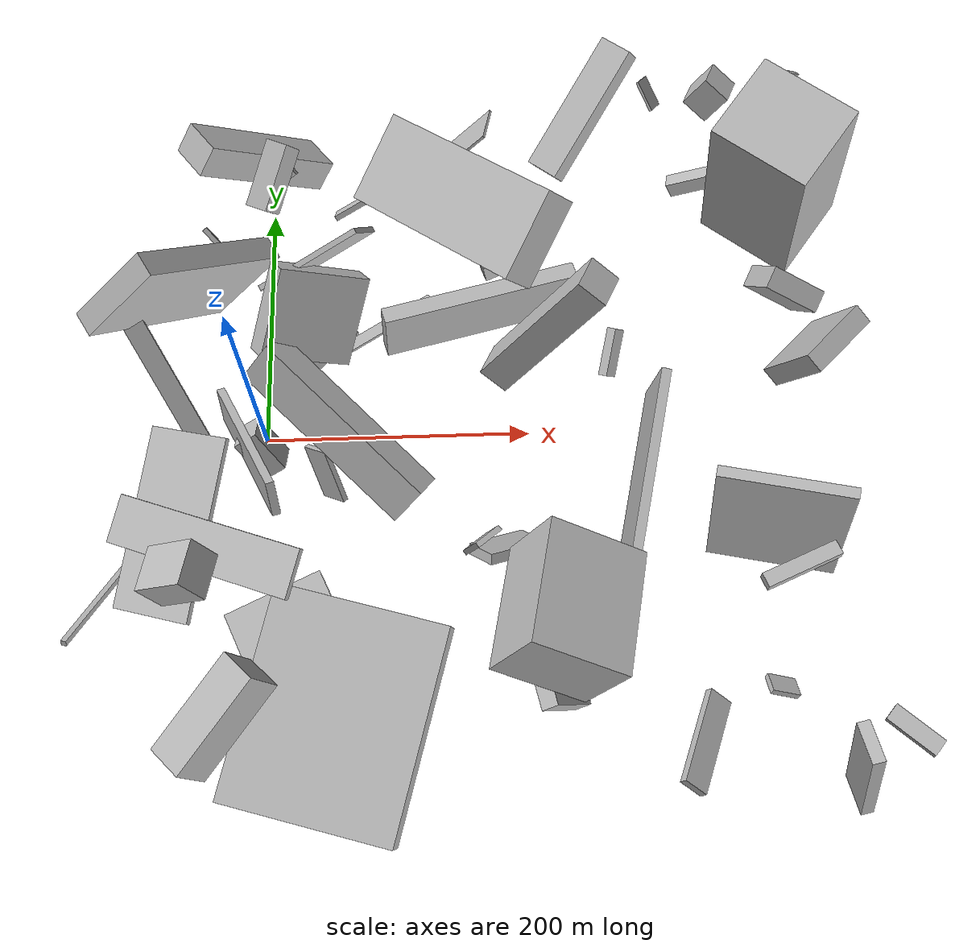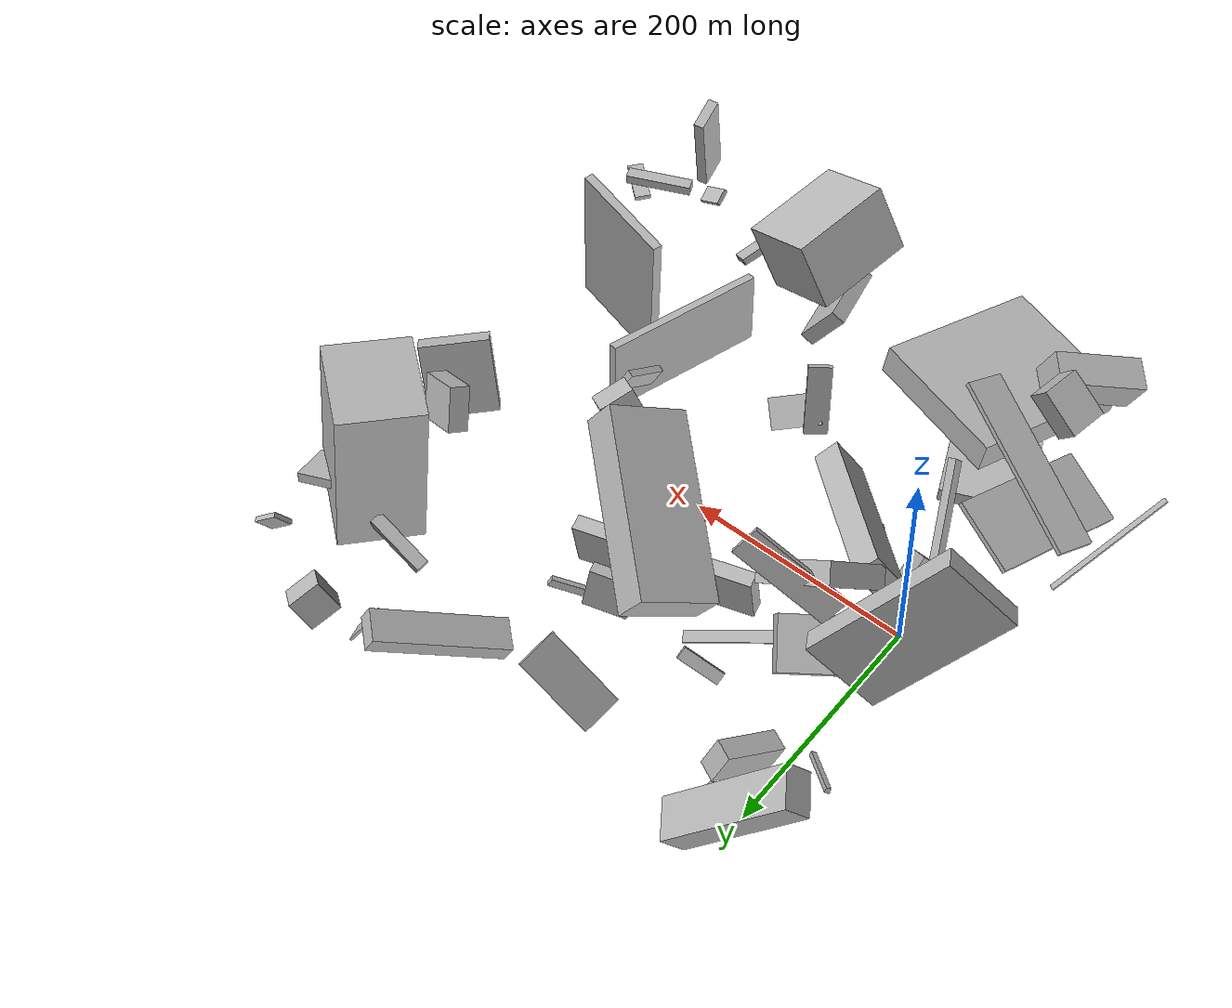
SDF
<sdf version="1.6">
 <world name="default">
  <scene>
   <sky><clouds><speed>12</speed></clouds></sky>
   <ambient>0.4 0.4 0.4 1</ambient>
   <background>0.7 0.7 0.7 1</background>
   <shadows>1</shadows>
  </scene>
  <gravity>0 0 -9.8066</gravity>
  <magnetic_field>6e-06 2.3e-05 -4.2e-05</magnetic_field>
  <physics default="0" name="default_physics" type="ode">
   <ode>
    <solver>
     <type>quick</type>
     <iters>10</iters>
     <sor>1.0</sor>
     <use_dynamic_moi_rescaling>0</use_dynamic_moi_rescaling>
    </solver>
    <constraints>
     <cfm>0</cfm>
     <erp>0.2</erp>
     <contact_max_correcting_vel>100</contact_max_correcting_vel>
     <contact_surface_layer>0.001</contact_surface_layer>
    </constraints>
   </ode>
   <max_step_size>0.004</max_step_size>
   <real_time_factor>1</real_time_factor>
   <real_time_update_rate>250</real_time_update_rate>
  </physics>
  <light name="sun" type="directional">
   <pose>0 0 10 0 0 0</pose>
   <diffuse>0.8 0.8 0.8 1</diffuse>
   <specular>0.2 0.2 0.2 1</specular>
   <attenuation>
    <range>1000</range>
    <constant>0.9</constant>
    <linear>0.01</linear>
    <quadratic>0.001</quadratic>
   </attenuation>
   <direction>-0.5 0.1 -0.9</direction>
  </light>
  <model name="building_1">
   <static>0</static>
   <pose>-78.18129679000117 -90.49370882800358 33.87310460260072 -1.077604676507756 0.16159175911285534 2.8240563409872337</pose>
   <link name="link">
    <gravity>0</gravity>
    <pose>0 0 55.5 0 0 0</pose>
    <collision name="collision"><geometry><box><size>4 4 111</size></box></geometry></collision>
    <visual name="visual">
     <cast_shadows>0</cast_shadows>
     <geometry><box><size>4 4 111</size></box></geometry>
     <material>
      <script>
       <uri>model://HANNAS_wall/materials/scripts</uri>
       <uri>model://HANNAS_wall/materials/textures</uri>
       <name>vrc/HANNAS_wall</name>
      </script>
     </material>
    </visual>
   </link>
  </model>
  <model name="building_2">
   <static>0</static>
   <pose>-27.843781496052138 -140.3063736461765 108.82966119542911 -0.7569606380208881 1.1108112535899812 0.43377262714252623</pose>
   <link name="link">
    <gravity>0</gravity>
    <pose>0 0 17.0 0 0 0</pose>
    <collision name="collision"><geometry><box><size>4 150 34</size></box></geometry></collision>
    <visual name="visual">
     <cast_shadows>0</cast_shadows>
     <geometry><box><size>4 150 34</size></box></geometry>
     <material>
      <script>
       <uri>model://HANNAS_wall/materials/scripts</uri>
       <uri>model://HANNAS_wall/materials/textures</uri>
       <name>vrc/HANNAS_wall</name>
      </script>
     </material>
    </visual>
   </link>
  </model>
  <model name="building_3">
   <static>0</static>
   <pose>237.54288682776044 104.3991749800445 42.80161590399257 -1.0074469416747756 -1.4873063204861363 1.2748844716001213</pose>
   <link name="link">
    <gravity>0</gravity>
    <pose>0 0 75.0 0 0 0</pose>
    <collision name="collision"><geometry><box><size>46 13 150</size></box></geometry></collision>
    <visual name="visual">
     <cast_shadows>0</cast_shadows>
     <geometry><box><size>46 13 150</size></box></geometry>
     <material>
      <script>
       <uri>model://HANNAS_wall/materials/scripts</uri>
       <uri>model://HANNAS_wall/materials/textures</uri>
       <name>vrc/HANNAS_wall</name>
      </script>
     </material>
    </visual>
   </link>
  </model>
  <model name="building_4">
   <static>0</static>
   <pose>319.0491087788223 198.20591661731055 34.953670804870455 -1.143111909308217 -0.17431220208560091 -1.6939097432282684</pose>
   <link name="link">
    <gravity>0</gravity>
    <pose>0 0 26.5 0 0 0</pose>
    <collision name="collision"><geometry><box><size>11 13 53</size></box></geometry></collision>
    <visual name="visual">
     <cast_shadows>0</cast_shadows>
     <geometry><box><size>11 13 53</size></box></geometry>
     <material>
      <script>
       <uri>model://HANNAS_wall/materials/scripts</uri>
       <uri>model://HANNAS_wall/materials/textures</uri>
       <name>vrc/HANNAS_wall</name>
      </script>
     </material>
    </visual>
   </link>
  </model>
  <model name="building_5">
   <static>0</static>
   <pose>204.01981244499657 -189.3713879537449 124.94457448664986 -0.13490526436487082 0.4445881896383476 -0.24608487071384416</pose>
   <link name="link">
    <gravity>0</gravity>
    <pose>0 0 29.0 0 0 0</pose>
    <collision name="collision"><geometry><box><size>69 85 58</size></box></geometry></collision>
    <visual name="visual">
     <cast_shadows>0</cast_shadows>
     <geometry><box><size>69 85 58</size></box></geometry>
     <material>
      <script>
       <uri>model://HANNAS_wall/materials/scripts</uri>
       <uri>model://HANNAS_wall/materials/textures</uri>
       <name>vrc/HANNAS_wall</name>
      </script>
     </material>
    </visual>
   </link>
  </model>
  <model name="building_6">
   <static>0</static>
   <pose>223.00309658498878 34.73282769384204 92.53773763397153 -0.5735099117116296 -1.0330994677107204 0.09508918160740283</pose>
   <link name="link">
    <gravity>0</gravity>
    <pose>0 0 12.0 0 0 0</pose>
    <collision name="collision"><geometry><box><size>136 29 24</size></box></geometry></collision>
    <visual name="visual">
     <cast_shadows>0</cast_shadows>
     <geometry><box><size>136 29 24</size></box></geometry>
     <material>
      <script>
       <uri>model://HANNAS_wall/materials/scripts</uri>
       <uri>model://HANNAS_wall/materials/textures</uri>
       <name>vrc/HANNAS_wall</name>
      </script>
     </material>
    </visual>
   </link>
  </model>
  <model name="building_7">
   <static>0</static>
   <pose>224.0416278835013 153.75173959815032 52.604347072701295 -3.086075514938882 1.0845162731425009 0.704233403788437</pose>
   <link name="link">
    <gravity>0</gravity>
    <pose>0 0 26.5 0 0 0</pose>
    <collision name="collision"><geometry><box><size>9 4 53</size></box></geometry></collision>
    <visual name="visual">
     <cast_shadows>0</cast_shadows>
     <geometry><box><size>9 4 53</size></box></geometry>
     <material>
      <script>
       <uri>model://HANNAS_wall/materials/scripts</uri>
       <uri>model://HANNAS_wall/materials/textures</uri>
       <name>vrc/HANNAS_wall</name>
      </script>
     </material>
    </visual>
   </link>
  </model>
  <model name="building_8">
   <static>0</static>
   <pose>-21.101445754804196 -226.7487820192154 95.1245369629251 -0.961360790404935 -1.1609148602504893 -2.9422696591086623</pose>
   <link name="link">
    <gravity>0</gravity>
    <pose>0 0 14.0 0 0 0</pose>
    <collision name="collision"><geometry><box><size>32 78 28</size></box></geometry></collision>
    <visual name="visual">
     <cast_shadows>0</cast_shadows>
     <geometry><box><size>32 78 28</size></box></geometry>
     <material>
      <script>
       <uri>model://HANNAS_wall/materials/scripts</uri>
       <uri>model://HANNAS_wall/materials/textures</uri>
       <name>vrc/HANNAS_wall</name>
      </script>
     </material>
    </visual>
   </link>
  </model>
  <model name="building_9">
   <static>0</static>
   <pose>-30.606954857441522 -37.637314679497685 47.22711899640321 0.1959688333841749 -0.7979002987157612 -1.277585525619697</pose>
   <link name="link">
    <gravity>0</gravity>
    <pose>0 0 61.0 0 0 0</pose>
    <collision name="collision"><geometry><box><size>4 15 122</size></box></geometry></collision>
    <visual name="visual">
     <cast_shadows>0</cast_shadows>
     <geometry><box><size>4 15 122</size></box></geometry>
     <material>
      <script>
       <uri>model://HANNAS_wall/materials/scripts</uri>
       <uri>model://HANNAS_wall/materials/textures</uri>
       <name>vrc/HANNAS_wall</name>
      </script>
     </material>
    </visual>
   </link>
  </model>
  <model name="building_10">
   <static>0</static>
   <pose>57.68448558426022 -48.687394954898345 43.391949996331334 2.2365169076512763 -0.26485569882716925 -2.39677056715141</pose>
   <link name="link">
    <gravity>0</gravity>
    <pose>0 0 12.5 0 0 0</pose>
    <collision name="collision"><geometry><box><size>4 43 25</size></box></geometry></collision>
    <visual name="visual">
     <cast_shadows>0</cast_shadows>
     <geometry><box><size>4 43 25</size></box></geometry>
     <material>
      <script>
       <uri>model://HANNAS_wall/materials/scripts</uri>
       <uri>model://HANNAS_wall/materials/textures</uri>
       <name>vrc/HANNAS_wall</name>
      </script>
     </material>
    </visual>
   </link>
  </model>
  <model name="building_11">
   <static>0</static>
   <pose>-12.997558576114482 205.0429812640303 25.260962285824444 0.7958970071407019 -0.5721989316156019 2.3270053243276103</pose>
   <link name="link">
    <gravity>0</gravity>
    <pose>0 0 21.0 0 0 0</pose>
    <collision name="collision"><geometry><box><size>10 4 42</size></box></geometry></collision>
    <visual name="visual">
     <cast_shadows>0</cast_shadows>
     <geometry><box><size>10 4 42</size></box></geometry>
     <material>
      <script>
       <uri>model://HANNAS_wall/materials/scripts</uri>
       <uri>model://HANNAS_wall/materials/textures</uri>
       <name>vrc/HANNAS_wall</name>
      </script>
     </material>
    </visual>
   </link>
  </model>
  <model name="building_12">
   <static>0</static>
   <pose>73.6734605016617 56.31479101763939 89.94653650655968 -0.7973657541362797 -0.7135955938181997 1.1856214263132159</pose>
   <link name="link">
    <gravity>0</gravity>
    <pose>0 0 35.0 0 0 0</pose>
    <collision name="collision"><geometry><box><size>66 19 70</size></box></geometry></collision>
    <visual name="visual">
     <cast_shadows>0</cast_shadows>
     <geometry><box><size>66 19 70</size></box></geometry>
     <material>
      <script>
       <uri>model://HANNAS_wall/materials/scripts</uri>
       <uri>model://HANNAS_wall/materials/textures</uri>
       <name>vrc/HANNAS_wall</name>
      </script>
     </material>
    </visual>
   </link>
  </model>
  <model name="building_13">
   <static>0</static>
   <pose>-17.07959346461477 234.08620484437506 55.131721001541145 1.3478165079400386 -0.7886877116196961 0.7811144185979331</pose>
   <link name="link">
    <gravity>0</gravity>
    <pose>0 0 17.0 0 0 0</pose>
    <collision name="collision"><geometry><box><size>25 124 34</size></box></geometry></collision>
    <visual name="visual">
     <cast_shadows>0</cast_shadows>
     <geometry><box><size>25 124 34</size></box></geometry>
     <material>
      <script>
       <uri>model://HANNAS_wall/materials/scripts</uri>
       <uri>model://HANNAS_wall/materials/textures</uri>
       <name>vrc/HANNAS_wall</name>
      </script>
     </material>
    </visual>
   </link>
  </model>
  <model name="building_14">
   <static>0</static>
   <pose>72.87309302613555 -20.476811963866098 90.72406613191441 2.5479466937706303 0.3106890654940146 -0.7390677298206609</pose>
   <link name="link">
    <gravity>0</gravity>
    <pose>0 0 18.0 0 0 0</pose>
    <collision name="collision"><geometry><box><size>150 22 36</size></box></geometry></collision>
    <visual name="visual">
     <cast_shadows>0</cast_shadows>
     <geometry><box><size>150 22 36</size></box></geometry>
     <material>
      <script>
       <uri>model://HANNAS_wall/materials/scripts</uri>
       <uri>model://HANNAS_wall/materials/textures</uri>
       <name>vrc/HANNAS_wall</name>
      </script>
     </material>
    </visual>
   </link>
  </model>
  <model name="building_15">
   <static>0</static>
   <pose>369.20265034455537 -104.04683592191749 81.02058788456182 1.577614698048931 -0.06935831651264907 -0.2360111879496553</pose>
   <link name="link">
    <gravity>0</gravity>
    <pose>0 0 4.0 0 0 0</pose>
    <collision name="collision"><geometry><box><size>93 144 8</size></box></geometry></collision>
    <visual name="visual">
     <cast_shadows>0</cast_shadows>
     <geometry><box><size>93 144 8</size></box></geometry>
     <material>
      <script>
       <uri>model://HANNAS_wall/materials/scripts</uri>
       <uri>model://HANNAS_wall/materials/textures</uri>
       <name>vrc/HANNAS_wall</name>
      </script>
     </material>
    </visual>
   </link>
  </model>
  <model name="building_16">
   <static>0</static>
   <pose>1.920510199987632 -207.77515163741595 51.22849426730992 1.543248080690599 1.3418521145143651 1.2568441831418837</pose>
   <link name="link">
    <gravity>0</gravity>
    <pose>0 0 62.0 0 0 0</pose>
    <collision name="collision"><geometry><box><size>25 150 124</size></box></geometry></collision>
    <visual name="visual">
     <cast_shadows>0</cast_shadows>
     <geometry><box><size>25 150 124</size></box></geometry>
     <material>
      <script>
       <uri>model://HANNAS_wall/materials/scripts</uri>
       <uri>model://HANNAS_wall/materials/textures</uri>
       <name>vrc/HANNAS_wall</name>
      </script>
     </material>
    </visual>
   </link>
  </model>
  <model name="building_17">
   <static>0</static>
   <pose>318.75875117834465 -252.01547736690378 29.76483836128744 0.45854479396440634 0.9567722342479539 -3.1188232171086483</pose>
   <link name="link">
    <gravity>0</gravity>
    <pose>0 0 9.5 0 0 0</pose>
    <collision name="collision"><geometry><box><size>6 73 19</size></box></geometry></collision>
    <visual name="visual">
     <cast_shadows>0</cast_shadows>
     <geometry><box><size>6 73 19</size></box></geometry>
     <material>
      <script>
       <uri>model://HANNAS_wall/materials/scripts</uri>
       <uri>model://HANNAS_wall/materials/textures</uri>
       <name>vrc/HANNAS_wall</name>
      </script>
     </material>
    </visual>
   </link>
  </model>
  <model name="building_18">
   <static>0</static>
   <pose>273.11876641638366 -69.52079516067502 54.33512382160772 -0.14010931382346414 -0.12109319141653901 2.943822730081956</pose>
   <link name="link">
    <gravity>0</gravity>
    <pose>0 0 31.5 0 0 0</pose>
    <collision name="collision"><geometry><box><size>7 145 63</size></box></geometry></collision>
    <visual name="visual">
     <cast_shadows>0</cast_shadows>
     <geometry><box><size>7 145 63</size></box></geometry>
     <material>
      <script>
       <uri>model://HANNAS_wall/materials/scripts</uri>
       <uri>model://HANNAS_wall/materials/textures</uri>
       <name>vrc/HANNAS_wall</name>
      </script>
     </material>
    </visual>
   </link>
  </model>
  <model name="building_19">
   <static>0</static>
   <pose>182.92487903746914 133.600973373979 46.18960275167831 -1.798193532887932 0.14989773382445667 -2.7917860551233344</pose>
   <link name="link">
    <gravity>0</gravity>
    <pose>0 0 5.5 0 0 0</pose>
    <collision name="collision"><geometry><box><size>37 37 11</size></box></geometry></collision>
    <visual name="visual">
     <cast_shadows>0</cast_shadows>
     <geometry><box><size>37 37 11</size></box></geometry>
     <material>
      <script>
       <uri>model://HANNAS_wall/materials/scripts</uri>
       <uri>model://HANNAS_wall/materials/textures</uri>
       <name>vrc/HANNAS_wall</name>
      </script>
     </material>
    </visual>
   </link>
  </model>
  <model name="building_20">
   <static>0</static>
   <pose>369.13725272482196 137.365634128108 99.18030386466867 1.4429060716212632 -0.008505237904481867 2.481660608356857</pose>
   <link name="link">
    <gravity>0</gravity>
    <pose>0 0 35.0 0 0 0</pose>
    <collision name="collision"><geometry><box><size>78 150 70</size></box></geometry></collision>
    <visual name="visual">
     <cast_shadows>0</cast_shadows>
     <geometry><box><size>78 150 70</size></box></geometry>
     <material>
      <script>
       <uri>model://HANNAS_wall/materials/scripts</uri>
       <uri>model://HANNAS_wall/materials/textures</uri>
       <name>vrc/HANNAS_wall</name>
      </script>
     </material>
    </visual>
   </link>
  </model>
  <model name="building_21">
   <static>0</static>
   <pose>167.81482341784505 -116.99120585793561 93.76363761799985 2.8384050069439066 0.03585705147859568 -2.493239939751223</pose>
   <link name="link">
    <gravity>0</gravity>
    <pose>0 0 33.0 0 0 0</pose>
    <collision name="collision"><geometry><box><size>20 4 66</size></box></geometry></collision>
    <visual name="visual">
     <cast_shadows>0</cast_shadows>
     <geometry><box><size>20 4 66</size></box></geometry>
     <material>
      <script>
       <uri>model://HANNAS_wall/materials/scripts</uri>
       <uri>model://HANNAS_wall/materials/textures</uri>
       <name>vrc/HANNAS_wall</name>
      </script>
     </material>
    </visual>
   </link>
  </model>
  <model name="building_22">
   <static>0</static>
   <pose>-8.664021945590818 96.41615814058866 86.98380234709232 0.31427371870853854 -0.7447554926698058 0.3246494881297412</pose>
   <link name="link">
    <gravity>0</gravity>
    <pose>0 0 67.5 0 0 0</pose>
    <collision name="collision"><geometry><box><size>73 18 135</size></box></geometry></collision>
    <visual name="visual">
     <cast_shadows>0</cast_shadows>
     <geometry><box><size>73 18 135</size></box></geometry>
     <material>
      <script>
       <uri>model://HANNAS_wall/materials/scripts</uri>
       <uri>model://HANNAS_wall/materials/textures</uri>
       <name>vrc/HANNAS_wall</name>
      </script>
     </material>
    </visual>
   </link>
  </model>
  <model name="building_23">
   <static>0</static>
   <pose>28.754393542313306 -167.07693777943246 14.806713951706632 -0.04968939066827015 0.021393643911209157 1.991307935269232</pose>
   <link name="link">
    <gravity>0</gravity>
    <pose>0 0 7.5 0 0 0</pose>
    <collision name="collision"><geometry><box><size>79 74 15</size></box></geometry></collision>
    <visual name="visual">
     <cast_shadows>0</cast_shadows>
     <geometry><box><size>79 74 15</size></box></geometry>
     <material>
      <script>
       <uri>model://HANNAS_wall/materials/scripts</uri>
       <uri>model://HANNAS_wall/materials/textures</uri>
       <name>vrc/HANNAS_wall</name>
      </script>
     </material>
    </visual>
   </link>
  </model>
  <model name="building_24">
   <static>0</static>
   <pose>221.62985384808093 -193.4711354543731 44.71809190168034 -0.5957983220883348 -0.09056914584752765 1.8052059288557465</pose>
   <link name="link">
    <gravity>0</gravity>
    <pose>0 0 22.5 0 0 0</pose>
    <collision name="collision"><geometry><box><size>62 13 45</size></box></geometry></collision>
    <visual name="visual">
     <cast_shadows>0</cast_shadows>
     <geometry><box><size>62 13 45</size></box></geometry>
     <material>
      <script>
       <uri>model://HANNAS_wall/materials/scripts</uri>
       <uri>model://HANNAS_wall/materials/textures</uri>
       <name>vrc/HANNAS_wall</name>
      </script>
     </material>
    </visual>
   </link>
  </model>
  <model name="building_25">
   <static>0</static>
   <pose>-5.658298372046458 -38.40145130560409 72.43946591904134 -1.7276757250878847 -0.6010911875644906 -1.1316556047562099</pose>
   <link name="link">
    <gravity>0</gravity>
    <pose>0 0 3.0 0 0 0</pose>
    <collision name="collision"><geometry><box><size>150 26 6</size></box></geometry></collision>
    <visual name="visual">
     <cast_shadows>0</cast_shadows>
     <geometry><box><size>150 26 6</size></box></geometry>
     <material>
      <script>
       <uri>model://HANNAS_wall/materials/scripts</uri>
       <uri>model://HANNAS_wall/materials/textures</uri>
       <name>vrc/HANNAS_wall</name>
      </script>
     </material>
    </visual>
   </link>
  </model>
  <model name="building_26">
   <static>0</static>
   <pose>-25.85696578286765 -143.71286095934738 157.0502997476562 -1.438098461999469 -0.932632430670448 2.835342020491629</pose>
   <link name="link">
    <gravity>0</gravity>
    <pose>0 0 15.5 0 0 0</pose>
    <collision name="collision"><geometry><box><size>24 40 31</size></box></geometry></collision>
    <visual name="visual">
     <cast_shadows>0</cast_shadows>
     <geometry><box><size>24 40 31</size></box></geometry>
     <material>
      <script>
       <uri>model://HANNAS_wall/materials/scripts</uri>
       <uri>model://HANNAS_wall/materials/textures</uri>
       <name>vrc/HANNAS_wall</name>
      </script>
     </material>
    </visual>
   </link>
  </model>
  <model name="building_27">
   <static>0</static>
   <pose>460.9610306229279 -240.1493018985511 16.10239149697509 -3.1144575011336184 0.04934181440365289 0.8591192323612022</pose>
   <link name="link">
    <gravity>0</gravity>
    <pose>0 0 2.0 0 0 0</pose>
    <collision name="collision"><geometry><box><size>14 41 4</size></box></geometry></collision>
    <visual name="visual">
     <cast_shadows>0</cast_shadows>
     <geometry><box><size>14 41 4</size></box></geometry>
     <material>
      <script>
       <uri>model://HANNAS_wall/materials/scripts</uri>
       <uri>model://HANNAS_wall/materials/textures</uri>
       <name>vrc/HANNAS_wall</name>
      </script>
     </material>
    </visual>
   </link>
  </model>
  <model name="building_28">
   <static>0</static>
   <pose>360.7351426345505 -228.5542811237316 79.86162024202852 -2.2772149872913094 -0.9280289634097144 0.7409607448855288</pose>
   <link name="link">
    <gravity>0</gravity>
    <pose>0 0 7.0 0 0 0</pose>
    <collision name="collision"><geometry><box><size>4 22 14</size></box></geometry></collision>
    <visual name="visual">
     <cast_shadows>0</cast_shadows>
     <geometry><box><size>4 22 14</size></box></geometry>
     <material>
      <script>
       <uri>model://HANNAS_wall/materials/scripts</uri>
       <uri>model://HANNAS_wall/materials/textures</uri>
       <name>vrc/HANNAS_wall</name>
      </script>
     </material>
    </visual>
   </link>
  </model>
  <model name="building_29">
   <static>0</static>
   <pose>408.0589984443728 260.54309426362556 87.12552323184906 -1.1821758645038063 0.8681597054611868 -2.2750201670216117</pose>
   <link name="link">
    <gravity>0</gravity>
    <pose>0 0 2.0 0 0 0</pose>
    <collision name="collision"><geometry><box><size>17 23 4</size></box></geometry></collision>
    <visual name="visual">
     <cast_shadows>0</cast_shadows>
     <geometry><box><size>17 23 4</size></box></geometry>
     <material>
      <script>
       <uri>model://HANNAS_wall/materials/scripts</uri>
       <uri>model://HANNAS_wall/materials/textures</uri>
       <name>vrc/HANNAS_wall</name>
      </script>
     </material>
    </visual>
   </link>
  </model>
  <model name="building_30">
   <static>0</static>
   <pose>365.49978609512925 271.68127882720097 44.0702581414963 1.0562204982265766 -0.39218857137108937 -1.942554882822648</pose>
   <link name="link">
    <gravity>0</gravity>
    <pose>0 0 12.0 0 0 0</pose>
    <collision name="collision"><geometry><box><size>28 28 24</size></box></geometry></collision>
    <visual name="visual">
     <cast_shadows>0</cast_shadows>
     <geometry><box><size>28 28 24</size></box></geometry>
     <material>
      <script>
       <uri>model://HANNAS_wall/materials/scripts</uri>
       <uri>model://HANNAS_wall/materials/textures</uri>
       <name>vrc/HANNAS_wall</name>
      </script>
     </material>
    </visual>
   </link>
  </model>
  <model name="building_31">
   <static>0</static>
   <pose>4.5912940266002416 184.8852915631558 85.89640576313485 -3.0773629806783633 0.505898172407758 -1.9718081790113793</pose>
   <link name="link">
    <gravity>0</gravity>
    <pose>0 0 13.5 0 0 0</pose>
    <collision name="collision"><geometry><box><size>53 17 27</size></box></geometry></collision>
    <visual name="visual">
     <cast_shadows>0</cast_shadows>
     <geometry><box><size>53 17 27</size></box></geometry>
     <material>
      <script>
       <uri>model://HANNAS_wall/materials/scripts</uri>
       <uri>model://HANNAS_wall/materials/textures</uri>
       <name>vrc/HANNAS_wall</name>
      </script>
     </material>
    </visual>
   </link>
  </model>
  <model name="building_32">
   <static>0</static>
   <pose>220.2125040997238 209.4590958549286 43.26768211476377 0.2668748391870771 -1.062033506190435 -2.5288018993469343</pose>
   <link name="link">
    <gravity>0</gravity>
    <pose>0 0 56.5 0 0 0</pose>
    <collision name="collision"><geometry><box><size>16 27 113</size></box></geometry></collision>
    <visual name="visual">
     <cast_shadows>0</cast_shadows>
     <geometry><box><size>16 27 113</size></box></geometry>
     <material>
      <script>
       <uri>model://HANNAS_wall/materials/scripts</uri>
       <uri>model://HANNAS_wall/materials/textures</uri>
       <name>vrc/HANNAS_wall</name>
      </script>
     </material>
    </visual>
   </link>
  </model>
  <model name="building_33">
   <static>0</static>
   <pose>72.84161943987145 157.0876305829293 86.37325363573498 2.532483979612794 0.5943806884482805 1.4546861288687374</pose>
   <link name="link">
    <gravity>0</gravity>
    <pose>0 0 2.0 0 0 0</pose>
    <collision name="collision"><geometry><box><size>10 36 4</size></box></geometry></collision>
    <visual name="visual">
     <cast_shadows>0</cast_shadows>
     <geometry><box><size>10 36 4</size></box></geometry>
     <material>
      <script>
       <uri>model://HANNAS_wall/materials/scripts</uri>
       <uri>model://HANNAS_wall/materials/textures</uri>
       <name>vrc/HANNAS_wall</name>
      </script>
     </material>
    </visual>
   </link>
  </model>
  <model name="building_34">
   <static>0</static>
   <pose>-32.702695060544315 146.89551123338646 30.387468167218962 1.1410543551620065 -0.5506710752683818 2.4280880994321907</pose>
   <link name="link">
    <gravity>0</gravity>
    <pose>0 0 2.0 0 0 0</pose>
    <collision name="collision"><geometry><box><size>54 4 4</size></box></geometry></collision>
    <visual name="visual">
     <cast_shadows>0</cast_shadows>
     <geometry><box><size>54 4 4</size></box></geometry>
     <material>
      <script>
       <uri>model://HANNAS_wall/materials/scripts</uri>
       <uri>model://HANNAS_wall/materials/textures</uri>
       <name>vrc/HANNAS_wall</name>
      </script>
     </material>
    </visual>
   </link>
  </model>
  <model name="building_35">
   <static>0</static>
   <pose>406.781007965085 -262.29413085695836 65.11409739311085 1.3811629175620808 -0.061314341642596915 0.21003840544375377</pose>
   <link name="link">
    <gravity>0</gravity>
    <pose>0 0 14.5 0 0 0</pose>
    <collision name="collision"><geometry><box><size>9 90 29</size></box></geometry></collision>
    <visual name="visual">
     <cast_shadows>0</cast_shadows>
     <geometry><box><size>9 90 29</size></box></geometry>
     <material>
      <script>
       <uri>model://HANNAS_wall/materials/scripts</uri>
       <uri>model://HANNAS_wall/materials/textures</uri>
       <name>vrc/HANNAS_wall</name>
      </script>
     </material>
    </visual>
   </link>
  </model>
  <model name="building_36">
   <static>0</static>
   <pose>15.394394109195046 47.881385970040775 30.54113364286505 1.3745785861003488 0.4649202080163378 2.2041049481038217</pose>
   <link name="link">
    <gravity>0</gravity>
    <pose>0 0 29.0 0 0 0</pose>
    <collision name="collision"><geometry><box><size>45 15 58</size></box></geometry></collision>
    <visual name="visual">
     <cast_shadows>0</cast_shadows>
     <geometry><box><size>45 15 58</size></box></geometry>
     <material>
      <script>
       <uri>model://HANNAS_wall/materials/scripts</uri>
       <uri>model://HANNAS_wall/materials/textures</uri>
       <name>vrc/HANNAS_wall</name>
      </script>
     </material>
    </visual>
   </link>
  </model>
  <model name="building_37">
   <static>0</static>
   <pose>56.39437938863627 87.42861210336523 123.91262978115897 0.6134410069644015 0.3464918910896173 -1.113616331821823</pose>
   <link name="link">
    <gravity>0</gravity>
    <pose>0 0 14.0 0 0 0</pose>
    <collision name="collision"><geometry><box><size>4 88 28</size></box></geometry></collision>
    <visual name="visual">
     <cast_shadows>0</cast_shadows>
     <geometry><box><size>4 88 28</size></box></geometry>
     <material>
      <script>
       <uri>model://HANNAS_wall/materials/scripts</uri>
       <uri>model://HANNAS_wall/materials/textures</uri>
       <name>vrc/HANNAS_wall</name>
      </script>
     </material>
    </visual>
   </link>
  </model>
  <model name="building_38">
   <static>0</static>
   <pose>100.70001677673316 158.32649702272653 138.01131112286453 -1.0305226404612104 -0.975777838278901 -2.7619711154671704</pose>
   <link name="link">
    <gravity>0</gravity>
    <pose>0 0 75.0 0 0 0</pose>
    <collision name="collision"><geometry><box><size>32 66 150</size></box></geometry></collision>
    <visual name="visual">
     <cast_shadows>0</cast_shadows>
     <geometry><box><size>32 66 150</size></box></geometry>
     <material>
      <script>
       <uri>model://HANNAS_wall/materials/scripts</uri>
       <uri>model://HANNAS_wall/materials/textures</uri>
       <name>vrc/HANNAS_wall</name>
      </script>
     </material>
    </visual>
   </link>
  </model>
  <model name="building_39">
   <static>0</static>
   <pose>-20.708776414073967 -112.24930634627094 106.85037424000687 -1.8993377885104235 -0.32021821243326376 1.338052312537864</pose>
   <link name="link">
    <gravity>0</gravity>
    <pose>0 0 30.5 0 0 0</pose>
    <collision name="collision"><geometry><box><size>127 4 61</size></box></geometry></collision>
    <visual name="visual">
     <cast_shadows>0</cast_shadows>
     <geometry><box><size>127 4 61</size></box></geometry>
     <material>
      <script>
       <uri>model://HANNAS_wall/materials/scripts</uri>
       <uri>model://HANNAS_wall/materials/textures</uri>
       <name>vrc/HANNAS_wall</name>
      </script>
     </material>
    </visual>
   </link>
  </model>
  <model name="building_40">
   <static>0</static>
   <pose>422.8494206600735 39.3708627162598 43.975955355563904 1.1254038112207587 -0.04165746173907833 -2.359022071503797</pose>
   <link name="link">
    <gravity>0</gravity>
    <pose>0 0 8.0 0 0 0</pose>
    <collision name="collision"><geometry><box><size>59 65 16</size></box></geometry></collision>
    <visual name="visual">
     <cast_shadows>0</cast_shadows>
     <geometry><box><size>59 65 16</size></box></geometry>
     <material>
      <script>
       <uri>model://HANNAS_wall/materials/scripts</uri>
       <uri>model://HANNAS_wall/materials/textures</uri>
       <name>vrc/HANNAS_wall</name>
      </script>
     </material>
    </visual>
   </link>
  </model>
  <model name="building_41">
   <static>0</static>
   <pose>413.0276489561823 76.8975967829053 58.83844911819227 0.6653475991715464 -0.9453605309047856 -1.0492680370347178</pose>
   <link name="link">
    <gravity>0</gravity>
    <pose>0 0 22.5 0 0 0</pose>
    <collision name="collision"><geometry><box><size>38 17 45</size></box></geometry></collision>
    <visual name="visual">
     <cast_shadows>0</cast_shadows>
     <geometry><box><size>38 17 45</size></box></geometry>
     <material>
      <script>
       <uri>model://HANNAS_wall/materials/scripts</uri>
       <uri>model://HANNAS_wall/materials/textures</uri>
       <name>vrc/HANNAS_wall</name>
      </script>
     </material>
    </visual>
   </link>
  </model>
  <model name="building_42">
   <static>0</static>
   <pose>368.23089309831926 -160.0721086364507 137.06748231631408 -0.0018966910884839854 -0.023969178209013474 1.9734736332552794</pose>
   <link name="link">
    <gravity>0</gravity>
    <pose>0 0 4.0 0 0 0</pose>
    <collision name="collision"><geometry><box><size>10 54 8</size></box></geometry></collision>
    <visual name="visual">
     <cast_shadows>0</cast_shadows>
     <geometry><box><size>10 54 8</size></box></geometry>
     <material>
      <script>
       <uri>model://HANNAS_wall/materials/scripts</uri>
       <uri>model://HANNAS_wall/materials/textures</uri>
       <name>vrc/HANNAS_wall</name>
      </script>
     </material>
    </visual>
   </link>
  </model>
  <model name="building_43">
   <static>0</static>
   <pose>418.5515486696902 188.982527673704 63.40519733980353 -0.16920735755598068 0.3336363637691824 -1.3245127912348493</pose>
   <link name="link">
    <gravity>0</gravity>
    <pose>0 0 4.0 0 0 0</pose>
    <collision name="collision"><geometry><box><size>37 41 8</size></box></geometry></collision>
    <visual name="visual">
     <cast_shadows>0</cast_shadows>
     <geometry><box><size>37 41 8</size></box></geometry>
     <material>
      <script>
       <uri>model://HANNAS_wall/materials/scripts</uri>
       <uri>model://HANNAS_wall/materials/textures</uri>
       <name>vrc/HANNAS_wall</name>
      </script>
     </material>
    </visual>
   </link>
  </model>
  <model name="building_44">
   <static>0</static>
   <pose>13.904471394815713 -36.37111187950307 39.66530787118887 -0.6326946547903997 -0.4906306055119466 0.30117289077175124</pose>
   <link name="link">
    <gravity>0</gravity>
    <pose>0 0 17.5 0 0 0</pose>
    <collision name="collision"><geometry><box><size>19 24 35</size></box></geometry></collision>
    <visual name="visual">
     <cast_shadows>0</cast_shadows>
     <geometry><box><size>19 24 35</size></box></geometry>
     <material>
      <script>
       <uri>model://HANNAS_wall/materials/scripts</uri>
       <uri>model://HANNAS_wall/materials/textures</uri>
       <name>vrc/HANNAS_wall</name>
      </script>
     </material>
    </visual>
   </link>
  </model>
  <model name="building_45">
   <static>0</static>
   <pose>45.60791239998326 -230.44685648479992 13.23523597756509 2.4770844128875904 -0.06842728980014835 1.6092390927488498</pose>
   <link name="link">
    <gravity>0</gravity>
    <pose>0 0 14.0 0 0 0</pose>
    <collision name="collision"><geometry><box><size>9 3 28</size></box></geometry></collision>
    <visual name="visual">
     <cast_shadows>0</cast_shadows>
     <geometry><box><size>9 3 28</size></box></geometry>
     <material>
      <script>
       <uri>model://HANNAS_wall/materials/scripts</uri>
       <uri>model://HANNAS_wall/materials/textures</uri>
       <name>vrc/HANNAS_wall</name>
      </script>
     </material>
    </visual>
   </link>
  </model>
  <model name="building_46">
   <static>0</static>
   <pose>161.2256727913491 -113.16777176726718 47.5566283209795 -2.2130040212704483 0.7127737240749119 -1.608635135627077</pose>
   <link name="link">
    <gravity>0</gravity>
    <pose>0 0 23.5 0 0 0</pose>
    <collision name="collision"><geometry><box><size>8 27 47</size></box></geometry></collision>
    <visual name="visual">
     <cast_shadows>0</cast_shadows>
     <geometry><box><size>8 27 47</size></box></geometry>
     <material>
      <script>
       <uri>model://HANNAS_wall/materials/scripts</uri>
       <uri>model://HANNAS_wall/materials/textures</uri>
       <name>vrc/HANNAS_wall</name>
      </script>
     </material>
    </visual>
   </link>
  </model>
  <model name="building_47">
   <static>0</static>
   <pose>127.18594734829664 112.08230423796847 14.543997650135882 1.1882425737952862 1.3378863832831887 -1.3368386871899665</pose>
   <link name="link">
    <gravity>0</gravity>
    <pose>0 0 40.0 0 0 0</pose>
    <collision name="collision"><geometry><box><size>2 10 80</size></box></geometry></collision>
    <visual name="visual">
     <cast_shadows>0</cast_shadows>
     <geometry><box><size>2 10 80</size></box></geometry>
     <material>
      <script>
       <uri>model://HANNAS_wall/materials/scripts</uri>
       <uri>model://HANNAS_wall/materials/textures</uri>
       <name>vrc/HANNAS_wall</name>
      </script>
     </material>
    </visual>
   </link>
  </model>
  <model name="building_48">
   <static>0</static>
   <pose>252.35585619557787 -11.482689221916047 121.37893772349179 -0.49821849525048106 1.0065922922328867 0.7537760313100728</pose>
   <link name="link">
    <gravity>0</gravity>
    <pose>0 0 16.5 0 0 0</pose>
    <collision name="collision"><geometry><box><size>18 6 33</size></box></geometry></collision>
    <visual name="visual">
     <cast_shadows>0</cast_shadows>
     <geometry><box><size>18 6 33</size></box></geometry>
     <material>
      <script>
       <uri>model://HANNAS_wall/materials/scripts</uri>
       <uri>model://HANNAS_wall/materials/textures</uri>
       <name>vrc/HANNAS_wall</name>
      </script>
     </material>
    </visual>
   </link>
  </model>
  <model name="building_49">
   <static>0</static>
   <pose>306.3609885660509 272.00195769309596 58.33951155355944 2.3209953020411236 0.5988551812008728 -1.021125653181179</pose>
   <link name="link">
    <gravity>0</gravity>
    <pose>0 0 1.0 0 0 0</pose>
    <collision name="collision"><geometry><box><size>25 23 2</size></box></geometry></collision>
    <visual name="visual">
     <cast_shadows>0</cast_shadows>
     <geometry><box><size>25 23 2</size></box></geometry>
     <material>
      <script>
       <uri>model://HANNAS_wall/materials/scripts</uri>
       <uri>model://HANNAS_wall/materials/textures</uri>
       <name>vrc/HANNAS_wall</name>
      </script>
     </material>
    </visual>
   </link>
  </model>
  <model name="building_50">
   <static>0</static>
   <pose>123.24429682278478 213.06781307795939 36.028349180667156 0.40356320231812487 -0.6531740820470341 2.705599472072563</pose>
   <link name="link">
    <gravity>0</gravity>
    <pose>0 0 38.5 0 0 0</pose>
    <collision name="collision"><geometry><box><size>2 34 77</size></box></geometry></collision>
    <visual name="visual">
     <cast_shadows>0</cast_shadows>
     <geometry><box><size>2 34 77</size></box></geometry>
     <material>
      <script>
       <uri>model://HANNAS_wall/materials/scripts</uri>
       <uri>model://HANNAS_wall/materials/textures</uri>
       <name>vrc/HANNAS_wall</name>
      </script>
     </material>
    </visual>
   </link>
  </model>
 </world>
</sdf>
